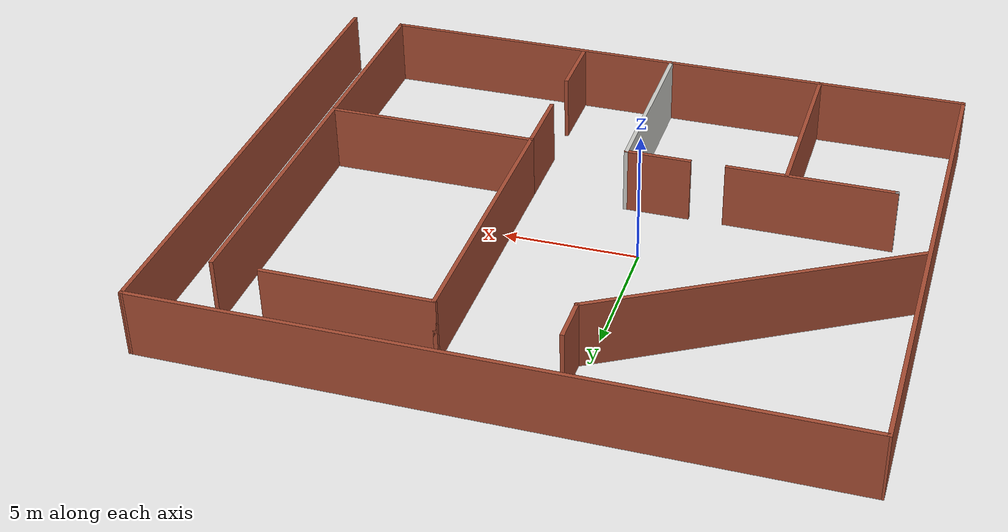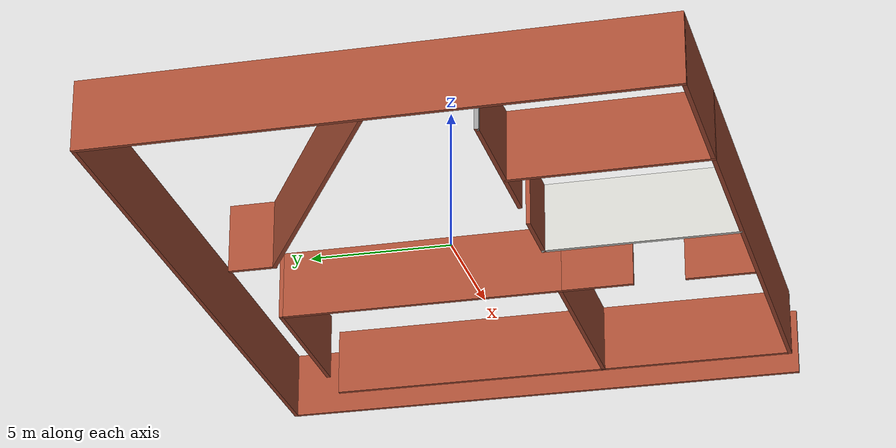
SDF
<?xml version='1.0'?>
<sdf version='1.6'>
  <model name='assignment_world'>
    <pose frame=''>2.28442 0.036608 0 0 -0 0</pose>
    <link name='Wall_11'>
      <collision name='Wall_11_Collision'>
        <geometry>
          <box>
            <size>7.25 0.15 2.5</size>
          </box>
        </geometry>
        <pose frame=''>0 0 1.25 0 -0 0</pose>
      </collision>
      <visual name='Wall_11_Visual'>
        <pose frame=''>0 0 1.25 0 -0 0</pose>
        <geometry>
          <box>
            <size>7.25 0.15 2.5</size>
          </box>
        </geometry>
        <material>
          <script>
            <uri>file://media/materials/scripts/gazebo.material</uri>
            <name>Gazebo/Bricks</name>
          </script>
          <ambient>1 1 1 1</ambient>
        </material>
        <meta>
          <layer>0</layer>
        </meta>
      </visual>
      <pose frame=''>10.422 -6.36383 0 0 -0 1.5708</pose>
    </link>
    <link name='Wall_12'>
      <collision name='Wall_12_Collision'>
        <geometry>
          <box>
            <size>8 0.15 2.5</size>
          </box>
        </geometry>
        <pose frame=''>0 0 1.25 0 -0 0</pose>
      </collision>
      <visual name='Wall_12_Visual'>
        <pose frame=''>0 0 1.25 0 -0 0</pose>
        <geometry>
          <box>
            <size>8 0.15 2.5</size>
          </box>
        </geometry>
        <material>
          <script>
            <uri>file://media/materials/scripts/gazebo.material</uri>
            <name>Gazebo/Bricks</name>
          </script>
          <ambient>1 1 1 1</ambient>
        </material>
        <meta>
          <layer>0</layer>
        </meta>
      </visual>
      <pose frame=''>6.49702 -2.81383 0 0 -0 3.14159</pose>
    </link>
    <link name='Wall_13'>
      <collision name='Wall_13_Collision'>
        <geometry>
          <box>
            <size>2.75 0.15 2.5</size>
          </box>
        </geometry>
        <pose frame=''>0 0 1.25 0 -0 0</pose>
      </collision>
      <visual name='Wall_13_Visual'>
        <pose frame=''>0 0 1.25 0 -0 0</pose>
        <geometry>
          <box>
            <size>2.75 0.15 2.5</size>
          </box>
        </geometry>
        <material>
          <script>
            <uri>file://media/materials/scripts/gazebo.material</uri>
            <name>Gazebo/Bricks</name>
          </script>
          <ambient>1 1 1 1</ambient>
        </material>
        <meta>
          <layer>0</layer>
        </meta>
      </visual>
      <pose frame=''>2.57202 -4.11383 0 0 -0 -1.5708</pose>
    </link>
    <link name='Wall_15'>
      <collision name='Wall_15_Collision'>
        <geometry>
          <box>
            <size>2.5 0.15 2.5</size>
          </box>
        </geometry>
        <pose frame=''>0 0 1.25 0 -0 0</pose>
      </collision>
      <visual name='Wall_15_Visual'>
        <pose frame=''>0 0 1.25 0 -0 0</pose>
        <geometry>
          <box>
            <size>2.5 0.15 2.5</size>
          </box>
        </geometry>
        <material>
          <script>
            <uri>file://media/materials/scripts/gazebo.material</uri>
            <name>Gazebo/Bricks</name>
          </script>
          <ambient>1 1 1 1</ambient>
        </material>
        <meta>
          <layer>0</layer>
        </meta>
      </visual>
      <pose frame=''>2.56055 -8.598 0 0 -0 -1.5708</pose>
    </link>
    <link name='Wall_17'>
      <collision name='Wall_17_Collision'>
        <geometry>
          <box>
            <size>10.5 0.15 2.5</size>
          </box>
        </geometry>
        <pose frame=''>0 0 1.25 0 -0 0</pose>
      </collision>
      <visual name='Wall_17_Visual'>
        <pose frame=''>0 0 1.25 0 -0 0</pose>
        <geometry>
          <box>
            <size>10.5 0.15 2.5</size>
          </box>
        </geometry>
        <material>
          <script>
            <uri>file://media/materials/scripts/gazebo.material</uri>
            <name>Gazebo/Bricks</name>
          </script>
          <ambient>1 1 1 1</ambient>
        </material>
        <meta>
          <layer>0</layer>
        </meta>
      </visual>
      <pose frame=''>10.422 2.36117 0 0 -0 1.5708</pose>
    </link>
    <link name='Wall_2'>
      <collision name='Wall_2_Collision'>
        <geometry>
          <box>
            <size>20.0001 0.15 2.5</size>
          </box>
        </geometry>
        <pose frame=''>0 0 1.25 0 -0 0</pose>
      </collision>
      <visual name='Wall_2_Visual'>
        <pose frame=''>0 0 1.25 0 -0 0</pose>
        <geometry>
          <box>
            <size>20.0001 0.15 2.5</size>
          </box>
        </geometry>
        <material>
          <script>
            <uri>file://media/materials/scripts/gazebo.material</uri>
            <name>Gazebo/Bricks</name>
          </script>
          <ambient>1 1 1 1</ambient>
        </material>
        <meta>
          <layer>0</layer>
        </meta>
      </visual>
      <pose frame=''>-12.4452 -0.009056 0 0 -0 -1.57314</pose>
    </link>
    <link name='Wall_24'>
      <collision name='Wall_24_Collision'>
        <geometry>
          <box>
            <size>10.5 0.15 2.5</size>
          </box>
        </geometry>
        <pose frame=''>0 0 1.25 0 -0 0</pose>
      </collision>
      <visual name='Wall_24_Visual'>
        <pose frame=''>0 0 1.25 0 -0 0</pose>
        <geometry>
          <box>
            <size>10.5 0.15 2.5</size>
          </box>
        </geometry>
        <material>
          <script>
            <uri>file://media/materials/scripts/gazebo.material</uri>
            <name>Gazebo/Bricks</name>
          </script>
          <ambient>1 1 1 1</ambient>
        </material>
        <meta>
          <layer>0</layer>
        </meta>
      </visual>
      <pose frame=''>2.57202 2.36117 0 0 -0 -1.5708</pose>
    </link>
    <link name='Wall_26'>
      <collision name='Wall_26_Collision'>
        <geometry>
          <box>
            <size>6.25 0.15 2.5</size>
          </box>
        </geometry>
        <pose frame=''>0 0 1.25 0 -0 0</pose>
      </collision>
      <visual name='Wall_26_Visual'>
        <pose frame=''>0 0 1.25 0 -0 0</pose>
        <geometry>
          <box>
            <size>6.25 0.15 2.5</size>
          </box>
        </geometry>
        <material>
          <script>
            <uri>file://media/materials/scripts/gazebo.material</uri>
            <name>Gazebo/Bricks</name>
          </script>
          <ambient>1 1 1 1</ambient>
        </material>
        <meta>
          <layer>0</layer>
        </meta>
      </visual>
      <pose frame=''>5.62202 7.53617 0 0 -0 0</pose>
    </link>
    <link name='Wall_33'>
      <collision name='Wall_33_Collision'>
        <geometry>
          <box>
            <size>12.25 0.15 2.5</size>
          </box>
        </geometry>
        <pose frame=''>0 0 1.25 0 -0 0</pose>
      </collision>
      <visual name='Wall_33_Visual'>
        <pose frame=''>0 0 1.25 0 -0 0</pose>
        <geometry>
          <box>
            <size>12.25 0.15 2.5</size>
          </box>
        </geometry>
        <material>
          <script>
            <uri>file://media/materials/scripts/gazebo.material</uri>
            <name>Gazebo/Bricks</name>
          </script>
          <ambient>1 1 1 1</ambient>
        </material>
        <meta>
          <layer>0</layer>
        </meta>
      </visual>
      <pose frame=''>-7.13474 3.38922 0 0 -0 0.523599</pose>
    </link>
    <link name='Wall_34'>
      <collision name='Wall_34_Collision'>
        <geometry>
          <box>
            <size>1.75 0.15 2.5</size>
          </box>
        </geometry>
        <pose frame=''>0 0 1.25 0 -0 0</pose>
      </collision>
      <visual name='Wall_34_Visual'>
        <pose frame=''>0 0 1.25 0 -0 0</pose>
        <geometry>
          <box>
            <size>1.75 0.15 2.5</size>
          </box>
        </geometry>
        <material>
          <script>
            <uri>file://media/materials/scripts/gazebo.material</uri>
            <name>Gazebo/Bricks</name>
          </script>
          <ambient>1 1 1 1</ambient>
        </material>
        <meta>
          <layer>0</layer>
        </meta>
      </visual>
      <pose frame=''>-1.89529 7.21422 0 0 -0 1.5708</pose>
    </link>
    <link name='Wall_4'>
      <collision name='Wall_4_Collision'>
        <geometry>
          <box>
            <size>25.0202 0.15 2.5</size>
          </box>
        </geometry>
        <pose frame=''>0 0 1.25 0 -0 0</pose>
      </collision>
      <visual name='Wall_4_Visual'>
        <pose frame=''>0 0 1.25 0 -0 0</pose>
        <geometry>
          <box>
            <size>25.0202 0.15 2.5</size>
          </box>
        </geometry>
        <material>
          <script>
            <uri>file://media/materials/scripts/gazebo.material</uri>
            <name>Gazebo/Bricks</name>
          </script>
          <ambient>1 1 1 1</ambient>
        </material>
        <meta>
          <layer>0</layer>
        </meta>
      </visual>
      <pose frame=''>0.033433 9.92606 0 0 -0 0.000813</pose>
    </link>
    <link name='Wall_42'>
      <collision name='Wall_42_Collision'>
        <geometry>
          <box>
            <size>7 0.15 2.5</size>
          </box>
        </geometry>
        <pose frame=''>0 0 1.25 0 -0 0</pose>
      </collision>
      <visual name='Wall_42_Visual'>
        <pose frame=''>0 0 1.25 0 -0 0</pose>
        <geometry>
          <box>
            <size>7 0.15 2.5</size>
          </box>
        </geometry>
        <material>
          <script>
            <uri>file://media/materials/scripts/gazebo.material</uri>
            <name>Gazebo/CeilingTiled</name>
          </script>
          <ambient>1 1 1 1</ambient>
        </material>
        <meta>
          <layer>0</layer>
        </meta>
      </visual>
      <pose frame=''>-1.02106 -6.43398 0 0 -0 1.5708</pose>
    </link>
    <link name='Wall_43'>
      <collision name='Wall_43_Collision'>
        <geometry>
          <box>
            <size>2.5 0.15 2.5</size>
          </box>
        </geometry>
        <pose frame=''>0 0 1.25 0 -0 0</pose>
      </collision>
      <visual name='Wall_43_Visual'>
        <pose frame=''>0 0 1.25 0 -0 0</pose>
        <geometry>
          <box>
            <size>2.5 0.15 2.5</size>
          </box>
        </geometry>
        <material>
          <script>
            <uri>file://media/materials/scripts/gazebo.material</uri>
            <name>Gazebo/Bricks</name>
          </script>
          <ambient>1 1 1 1</ambient>
        </material>
        <meta>
          <layer>0</layer>
        </meta>
      </visual>
      <pose frame=''>-2.19606 -3.00899 0 0 -0 3.14159</pose>
    </link>
    <link name='Wall_45'>
      <collision name='Wall_45_Collision'>
        <geometry>
          <box>
            <size>7 0.15 2.5</size>
          </box>
        </geometry>
        <pose frame=''>0 0 1.25 0 -0 0</pose>
      </collision>
      <visual name='Wall_45_Visual'>
        <pose frame=''>0 0 1.25 0 -0 0</pose>
        <geometry>
          <box>
            <size>7 0.15 2.5</size>
          </box>
        </geometry>
        <material>
          <script>
            <uri>file://media/materials/scripts/gazebo.material</uri>
            <name>Gazebo/Bricks</name>
          </script>
          <ambient>1 1 1 1</ambient>
        </material>
        <meta>
          <layer>0</layer>
        </meta>
      </visual>
      <pose frame=''>-6.94735 -6.51123 0 0 -0 1.5708</pose>
    </link>
    <link name='Wall_47'>
      <collision name='Wall_47_Collision'>
        <geometry>
          <box>
            <size>6.25 0.15 2.5</size>
          </box>
        </geometry>
        <pose frame=''>0 0 1.25 0 -0 0</pose>
      </collision>
      <visual name='Wall_47_Visual'>
        <pose frame=''>0 0 1.25 0 -0 0</pose>
        <geometry>
          <box>
            <size>6.25 0.15 2.5</size>
          </box>
        </geometry>
        <material>
          <script>
            <uri>file://media/materials/scripts/gazebo.material</uri>
            <name>Gazebo/Bricks</name>
          </script>
          <ambient>1 1 1 1</ambient>
        </material>
        <meta>
          <layer>0</layer>
        </meta>
      </visual>
      <pose frame=''>-7.83368 -3.02257 0 0 -0 3.14159</pose>
    </link>
    <link name='Wall_48'>
      <collision name='Wall_48_Collision'>
        <geometry>
          <box>
            <size>0.15 0.15 2.5</size>
          </box>
        </geometry>
        <pose frame=''>0 0 1.25 0 -0 0</pose>
      </collision>
      <visual name='Wall_48_Visual'>
        <pose frame=''>0 0 1.25 0 -0 0</pose>
        <geometry>
          <box>
            <size>0.15 0.15 2.5</size>
          </box>
        </geometry>
        <material>
          <script>
            <uri>file://media/materials/scripts/gazebo.material</uri>
            <name>Gazebo/Grey</name>
          </script>
          <ambient>1 1 1 1</ambient>
        </material>
        <meta>
          <layer>0</layer>
        </meta>
      </visual>
      <pose frame=''>-10.8837 -3.02257 0 0 -0 0</pose>
    </link>
    <link name='Wall_6'>
      <collision name='Wall_6_Collision'>
        <geometry>
          <box>
            <size>20 0.15 2.5</size>
          </box>
        </geometry>
        <pose frame=''>0 0 1.25 0 -0 0</pose>
      </collision>
      <visual name='Wall_6_Visual'>
        <pose frame=''>0 0 1.25 0 -0 0</pose>
        <geometry>
          <box>
            <size>20 0.15 2.5</size>
          </box>
        </geometry>
        <material>
          <script>
            <uri>file://media/materials/scripts/gazebo.material</uri>
            <name>Gazebo/Bricks</name>
          </script>
          <ambient>1 1 1 1</ambient>
        </material>
        <meta>
          <layer>0</layer>
        </meta>
      </visual>
      <pose frame=''>12.4685 0.011172 0 0 -0 -1.5708</pose>
    </link>
    <link name='Wall_8'>
      <collision name='Wall_8_Collision'>
        <geometry>
          <box>
            <size>23.0202 0.15 2.5</size>
          </box>
        </geometry>
        <pose frame=''>0 0 1.25 0 -0 0</pose>
      </collision>
      <visual name='Wall_8_Visual'>
        <pose frame=''>0 0 1.25 0 -0 0</pose>
        <geometry>
          <box>
            <size>23.0202 0.15 2.5</size>
          </box>
        </geometry>
        <material>
          <script>
            <uri>file://media/materials/scripts/gazebo.material</uri>
            <name>Gazebo/Bricks</name>
          </script>
          <ambient>1 1 1 1</ambient>
        </material>
        <meta>
          <layer>0</layer>
        </meta>
      </visual>
      <pose frame=''>-1.01309 -9.92394 0 0 -0 0.000884</pose>
    </link>
    <static>1</static>
  </model>
</sdf>
